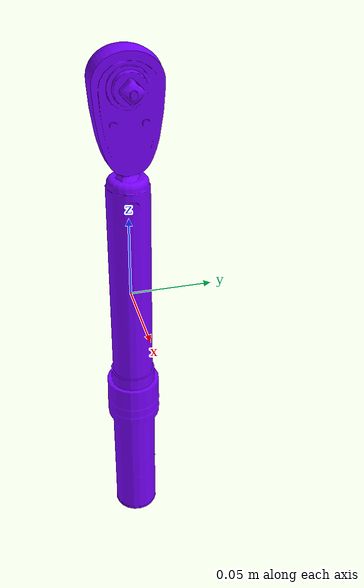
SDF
<?xml version="1.0"?>
<sdf version="1.7">
  <model name="torque_wrench_bright">
    <pose>0 0 0 0 0 0</pose>
    <static>false</static>
    <link name="link">
      <!-- link frame = tool CoM; Z = long axis (+ toward tool end), X = forward, Y = Z x X -->
      <inertial>
        <pose>0 0 0 0 0 0</pose>
        <mass>0.939233</mass>
        <inertia>
          <ixx>9.212983e-03</ixx>
          <ixy>-1.242260e-09</ixy>
          <ixz>-4.753899e-06</ixz>
          <iyy>9.196441e-03</iyy>
          <iyz>-3.099230e-08</iyz>
          <izz>9.576840e-05</izz>
        </inertia>
      </inertial>
      <collision name="collision">
        <geometry>
          <mesh>
            <uri>model://torque_wrench/meshes/torque_wrench.dae</uri>
          </mesh>
        </geometry>
      </collision>
      <visual name="visual">
        <geometry>
          <mesh>
            <uri>model://torque_wrench/meshes/torque_wrench.dae</uri>
          </mesh>
        </geometry>
        <material>
          <ambient>0.211 0.000 0.450 1.0</ambient>
          <diffuse>0.470 0.000 1.000 1.0</diffuse>
          <specular>0.85 0.85 0.85 1.0</specular>
          <emissive>0 0 0 1.0</emissive>
        </material>
      </visual>
    </link>
  </model>
</sdf>
